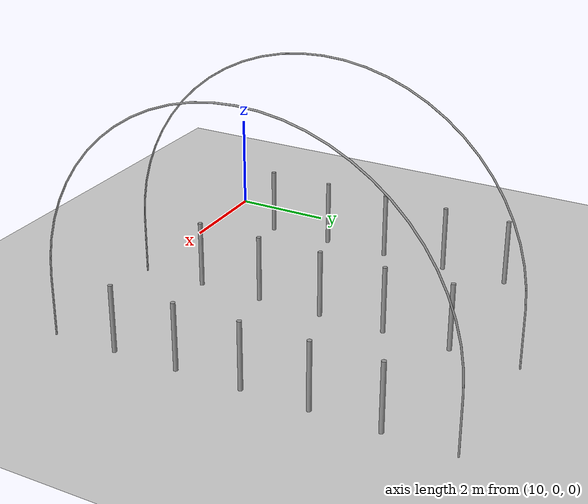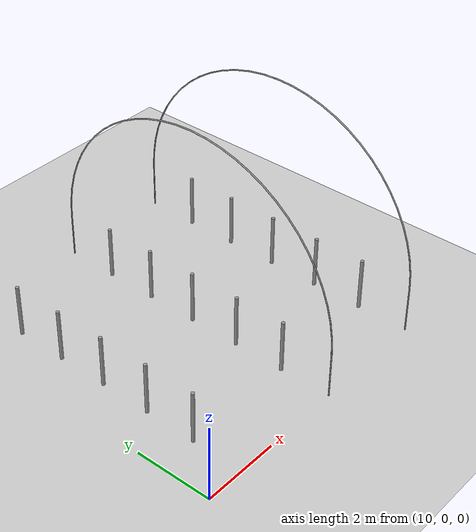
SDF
<sdf version="1.6">
 <world name="default">
  <model name="unit_cylinder_10">
   <static>1</static>
   <pose>11.02 1.35 0.691175 0 -0 0</pose>
   <link name="link">
    <inertial>
     <mass>1</mass>
     <inertia><ixz>0</ixz><ixx>1</ixx><ixy>0</ixy><izz>1</izz><iyy>1</iyy><iyz>0</iyz></inertia>
    </inertial>
    <collision name="collision">
     <geometry><cylinder><length>1.38235</length><radius>0.0456111</radius></cylinder></geometry>
    </collision>
    <visual name="visual">
     <geometry><cylinder><length>1.38235</length><radius>0.0456111</radius></cylinder></geometry>
     <material>
      <script><uri>file://media/materials/scripts/gazebo.material</uri><name>Gazebo/Grey</name></script>
     </material>
    </visual>
    <velocity_decay><linear>0</linear><angular>0</angular></velocity_decay>
   </link>
  </model>
  <model name="unit_cylinder_11">
   <static>1</static>
   <pose>11.02 2.7 0.691175 0 -0 0</pose>
   <link name="link">
    <inertial>
     <mass>1</mass>
     <inertia><ixz>0</ixz><ixx>1</ixx><ixy>0</ixy><izz>1</izz><iyy>1</iyy><iyz>0</iyz></inertia>
    </inertial>
    <collision name="collision">
     <geometry><cylinder><length>1.38235</length><radius>0.0456111</radius></cylinder></geometry>
    </collision>
    <visual name="visual">
     <geometry><cylinder><length>1.38235</length><radius>0.0456111</radius></cylinder></geometry>
     <material>
      <script><uri>file://media/materials/scripts/gazebo.material</uri><name>Gazebo/Grey</name></script>
     </material>
    </visual>
    <velocity_decay><linear>0</linear><angular>0</angular></velocity_decay>
   </link>
  </model>
  <model name="unit_cylinder_12">
   <static>1</static>
   <pose>11.02 4.05 0.691175 0 -0 0</pose>
   <link name="link">
    <inertial>
     <mass>1</mass>
     <inertia><ixz>0</ixz><ixx>1</ixx><ixy>0</ixy><izz>1</izz><iyy>1</iyy><iyz>0</iyz></inertia>
    </inertial>
    <collision name="collision">
     <geometry><cylinder><length>1.38235</length><radius>0.0456111</radius></cylinder></geometry>
    </collision>
    <visual name="visual">
     <geometry><cylinder><length>1.38235</length><radius>0.0456111</radius></cylinder></geometry>
     <material>
      <script><uri>file://media/materials/scripts/gazebo.material</uri><name>Gazebo/Grey</name></script>
     </material>
    </visual>
    <velocity_decay><linear>0</linear><angular>0</angular></velocity_decay>
   </link>
  </model>
  <model name="unit_cylinder_13">
   <static>1</static>
   <pose>11.02 5.4 0.691175 0 -0 0</pose>
   <link name="link">
    <inertial>
     <mass>1</mass>
     <inertia><ixz>0</ixz><ixx>1</ixx><ixy>0</ixy><izz>1</izz><iyy>1</iyy><iyz>0</iyz></inertia>
    </inertial>
    <collision name="collision">
     <geometry><cylinder><length>1.38235</length><radius>0.0456111</radius></cylinder></geometry>
    </collision>
    <visual name="visual">
     <geometry><cylinder><length>1.38235</length><radius>0.0456111</radius></cylinder></geometry>
     <material>
      <script><uri>file://media/materials/scripts/gazebo.material</uri><name>Gazebo/Grey</name></script>
     </material>
    </visual>
    <velocity_decay><linear>0</linear><angular>0</angular></velocity_decay>
   </link>
  </model>
  <model name="unit_cylinder_14">
   <static>1</static>
   <pose>11.02 6.75 0.691175 0 -0 0</pose>
   <link name="link">
    <inertial>
     <mass>1</mass>
     <inertia><ixz>0</ixz><ixx>1</ixx><ixy>0</ixy><izz>1</izz><iyy>1</iyy><iyz>0</iyz></inertia>
    </inertial>
    <collision name="collision">
     <geometry><cylinder><length>1.38235</length><radius>0.0456111</radius></cylinder></geometry>
    </collision>
    <visual name="visual">
     <geometry><cylinder><length>1.38235</length><radius>0.0456111</radius></cylinder></geometry>
     <material>
      <script><uri>file://media/materials/scripts/gazebo.material</uri><name>Gazebo/Grey</name></script>
     </material>
    </visual>
    <velocity_decay><linear>0</linear><angular>0</angular></velocity_decay>
   </link>
  </model>
  <model name="unit_cylinder_15">
   <static>1</static>
   <pose>14.03 1.35 0.691175 0 -0 0</pose>
   <link name="link">
    <inertial>
     <mass>1</mass>
     <inertia><ixz>0</ixz><ixx>1</ixx><ixy>0</ixy><izz>1</izz><iyy>1</iyy><iyz>0</iyz></inertia>
    </inertial>
    <collision name="collision">
     <geometry><cylinder><length>1.38235</length><radius>0.0456111</radius></cylinder></geometry>
    </collision>
    <visual name="visual">
     <geometry><cylinder><length>1.38235</length><radius>0.0456111</radius></cylinder></geometry>
     <material>
      <script><uri>file://media/materials/scripts/gazebo.material</uri><name>Gazebo/Grey</name></script>
     </material>
    </visual>
    <velocity_decay><linear>0</linear><angular>0</angular></velocity_decay>
   </link>
  </model>
  <model name="unit_cylinder_16">
   <static>1</static>
   <pose>14.03 2.7 0.691175 0 -0 0</pose>
   <link name="link">
    <inertial>
     <mass>1</mass>
     <inertia><ixz>0</ixz><ixx>1</ixx><ixy>0</ixy><izz>1</izz><iyy>1</iyy><iyz>0</iyz></inertia>
    </inertial>
    <collision name="collision">
     <geometry><cylinder><length>1.38235</length><radius>0.0456111</radius></cylinder></geometry>
    </collision>
    <visual name="visual">
     <geometry><cylinder><length>1.38235</length><radius>0.0456111</radius></cylinder></geometry>
     <material>
      <script><uri>file://media/materials/scripts/gazebo.material</uri><name>Gazebo/Grey</name></script>
     </material>
    </visual>
    <velocity_decay><linear>0</linear><angular>0</angular></velocity_decay>
   </link>
  </model>
  <model name="unit_cylinder_17">
   <static>1</static>
   <pose>14.03 4.05 0.691175 0 -0 0</pose>
   <link name="link">
    <inertial>
     <mass>1</mass>
     <inertia><ixz>0</ixz><ixx>1</ixx><ixy>0</ixy><izz>1</izz><iyy>1</iyy><iyz>0</iyz></inertia>
    </inertial>
    <collision name="collision">
     <geometry><cylinder><length>1.38235</length><radius>0.0456111</radius></cylinder></geometry>
    </collision>
    <visual name="visual">
     <geometry><cylinder><length>1.38235</length><radius>0.0456111</radius></cylinder></geometry>
     <material>
      <script><uri>file://media/materials/scripts/gazebo.material</uri><name>Gazebo/Grey</name></script>
     </material>
    </visual>
    <velocity_decay><linear>0</linear><angular>0</angular></velocity_decay>
   </link>
  </model>
  <model name="unit_cylinder_18">
   <static>1</static>
   <pose>14.03 5.4 0.691175 0 -0 0</pose>
   <link name="link">
    <inertial>
     <mass>1</mass>
     <inertia><ixz>0</ixz><ixx>1</ixx><ixy>0</ixy><izz>1</izz><iyy>1</iyy><iyz>0</iyz></inertia>
    </inertial>
    <collision name="collision">
     <geometry><cylinder><length>1.38235</length><radius>0.0456111</radius></cylinder></geometry>
    </collision>
    <visual name="visual">
     <geometry><cylinder><length>1.38235</length><radius>0.0456111</radius></cylinder></geometry>
     <material>
      <script><uri>file://media/materials/scripts/gazebo.material</uri><name>Gazebo/Grey</name></script>
     </material>
    </visual>
    <velocity_decay><linear>0</linear><angular>0</angular></velocity_decay>
   </link>
  </model>
  <model name="unit_cylinder_19">
   <static>1</static>
   <pose>14.03 6.75 0.691175 0 -0 0</pose>
   <link name="link">
    <inertial>
     <mass>1</mass>
     <inertia><ixz>0</ixz><ixx>1</ixx><ixy>0</ixy><izz>1</izz><iyy>1</iyy><iyz>0</iyz></inertia>
    </inertial>
    <collision name="collision">
     <geometry><cylinder><length>1.38235</length><radius>0.0456111</radius></cylinder></geometry>
    </collision>
    <visual name="visual">
     <geometry><cylinder><length>1.38235</length><radius>0.0456111</radius></cylinder></geometry>
     <material>
      <script><uri>file://media/materials/scripts/gazebo.material</uri><name>Gazebo/Grey</name></script>
     </material>
    </visual>
    <velocity_decay><linear>0</linear><angular>0</angular></velocity_decay>
   </link>
  </model>
  <model name="unit_cylinder_20">
   <static>1</static>
   <pose>17.04 1.35 0.691175 0 -0 0</pose>
   <link name="link">
    <inertial>
     <mass>1</mass>
     <inertia><ixz>0</ixz><ixx>1</ixx><ixy>0</ixy><izz>1</izz><iyy>1</iyy><iyz>0</iyz></inertia>
    </inertial>
    <collision name="collision">
     <geometry><cylinder><length>1.38235</length><radius>0.0456111</radius></cylinder></geometry>
    </collision>
    <visual name="visual">
     <geometry><cylinder><length>1.38235</length><radius>0.0456111</radius></cylinder></geometry>
     <material>
      <script><uri>file://media/materials/scripts/gazebo.material</uri><name>Gazebo/Grey</name></script>
     </material>
    </visual>
    <velocity_decay><linear>0</linear><angular>0</angular></velocity_decay>
   </link>
  </model>
  <model name="unit_cylinder_21">
   <static>1</static>
   <pose>17.04 2.7 0.691175 0 -0 0</pose>
   <link name="link">
    <inertial>
     <mass>1</mass>
     <inertia><ixz>0</ixz><ixx>1</ixx><ixy>0</ixy><izz>1</izz><iyy>1</iyy><iyz>0</iyz></inertia>
    </inertial>
    <collision name="collision">
     <geometry><cylinder><length>1.38235</length><radius>0.0456111</radius></cylinder></geometry>
    </collision>
    <visual name="visual">
     <geometry><cylinder><length>1.38235</length><radius>0.0456111</radius></cylinder></geometry>
     <material>
      <script><uri>file://media/materials/scripts/gazebo.material</uri><name>Gazebo/Grey</name></script>
     </material>
    </visual>
    <velocity_decay><linear>0</linear><angular>0</angular></velocity_decay>
   </link>
  </model>
  <model name="unit_cylinder_22">
   <static>1</static>
   <pose>17.04 4.05 0.691175 0 -0 0</pose>
   <link name="link">
    <inertial>
     <mass>1</mass>
     <inertia><ixz>0</ixz><ixx>1</ixx><ixy>0</ixy><izz>1</izz><iyy>1</iyy><iyz>0</iyz></inertia>
    </inertial>
    <collision name="collision">
     <geometry><cylinder><length>1.38235</length><radius>0.0456111</radius></cylinder></geometry>
    </collision>
    <visual name="visual">
     <geometry><cylinder><length>1.38235</length><radius>0.0456111</radius></cylinder></geometry>
     <material>
      <script><uri>file://media/materials/scripts/gazebo.material</uri><name>Gazebo/Grey</name></script>
     </material>
    </visual>
    <velocity_decay><linear>0</linear><angular>0</angular></velocity_decay>
   </link>
  </model>
  <model name="unit_cylinder_23">
   <static>1</static>
   <pose>17.04 5.4 0.691175 0 -0 0</pose>
   <link name="link">
    <inertial>
     <mass>1</mass>
     <inertia><ixz>0</ixz><ixx>1</ixx><ixy>0</ixy><izz>1</izz><iyy>1</iyy><iyz>0</iyz></inertia>
    </inertial>
    <collision name="collision">
     <geometry><cylinder><length>1.38235</length><radius>0.0456111</radius></cylinder></geometry>
    </collision>
    <visual name="visual">
     <geometry><cylinder><length>1.38235</length><radius>0.0456111</radius></cylinder></geometry>
     <material>
      <script><uri>file://media/materials/scripts/gazebo.material</uri><name>Gazebo/Grey</name></script>
     </material>
    </visual>
    <velocity_decay><linear>0</linear><angular>0</angular></velocity_decay>
   </link>
  </model>
  <model name="unit_cylinder_24">
   <static>1</static>
   <pose>17.04 6.75 0.691175 0 -0 0</pose>
   <link name="link">
    <inertial>
     <mass>1</mass>
     <inertia><ixz>0</ixz><ixx>1</ixx><ixy>0</ixy><izz>1</izz><iyy>1</iyy><iyz>0</iyz></inertia>
    </inertial>
    <collision name="collision">
     <geometry><cylinder><length>1.38235</length><radius>0.0456111</radius></cylinder></geometry>
    </collision>
    <visual name="visual">
     <geometry><cylinder><length>1.38235</length><radius>0.0456111</radius></cylinder></geometry>
     <material>
      <script><uri>file://media/materials/scripts/gazebo.material</uri><name>Gazebo/Grey</name></script>
     </material>
    </visual>
    <velocity_decay><linear>0</linear><angular>0</angular></velocity_decay>
   </link>
  </model>
  <model name="dummy_arch_3">
   <static>1</static>
   <pose>14.03 0 0 1.5708 -0 1.5708</pose>
   <link name="link">
    <inertial>
     <mass>1</mass>
     <inertia><ixz>0</ixz><ixx>10</ixx><ixy>0</ixy><izz>10</izz><iyy>1</iyy><iyz>10</iyz></inertia>
    </inertial>
    <collision name="collision">
     <geometry><mesh><uri>model://dummy_arch/dummy_arch.stl</uri></mesh></geometry>
    </collision>
    <visual name="visual">
     <geometry><mesh><uri>model://dummy_arch/dummy_arch.stl</uri></mesh></geometry>
     <material>
      <script><uri>file://media/materials/scripts/gazebo.material</uri><name>Gazebo/Grey</name></script>
     </material>
    </visual>
    <velocity_decay><linear>0</linear><angular>0</angular></velocity_decay>
   </link>
  </model>
  <model name="dummy_arch_4">
   <static>1</static>
   <pose>17.04 0 0 1.5708 -0 1.5708</pose>
   <link name="link">
    <inertial>
     <mass>1</mass>
     <inertia><ixz>0</ixz><ixx>10</ixx><ixy>0</ixy><izz>10</izz><iyy>1</iyy><iyz>10</iyz></inertia>
    </inertial>
    <collision name="collision">
     <geometry><mesh><uri>model://dummy_arch/dummy_arch.stl</uri></mesh></geometry>
    </collision>
    <visual name="visual">
     <geometry><mesh><uri>model://dummy_arch/dummy_arch.stl</uri></mesh></geometry>
     <material>
      <script><uri>file://media/materials/scripts/gazebo.material</uri><name>Gazebo/Grey</name></script>
     </material>
    </visual>
    <velocity_decay><linear>0</linear><angular>0</angular></velocity_decay>
   </link>
  </model>
  <model name="ground_plane">
   <static>1</static>
   <link name="link">
    <collision name="collision">
     <geometry><plane><normal>0 0 1</normal><size>100 100</size></plane></geometry>
     <surface><friction><ode><mu>100</mu><mu2>50</mu2></ode></friction></surface>
    </collision>
    <visual name="visual">
     <cast_shadows>0</cast_shadows>
     <geometry><plane><normal>0 0 1</normal><size>100 100</size></plane></geometry>
     <material>
      <script><uri>file://media/materials/scripts/gazebo.material</uri><name>Gazebo/Grey</name></script>
     </material>
    </visual>
   </link>
  </model>
 </world>
</sdf>
